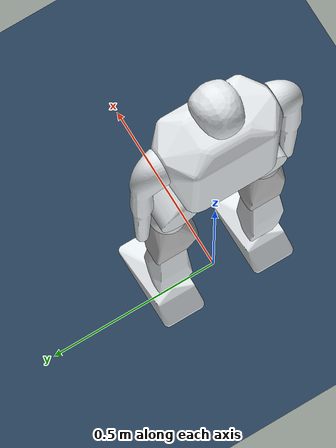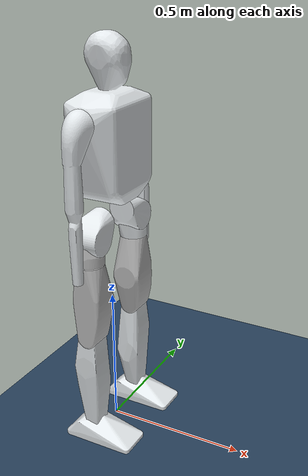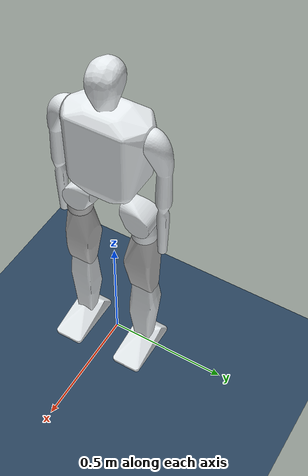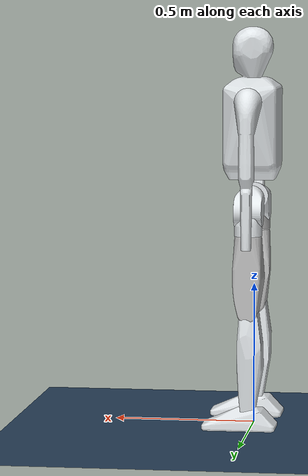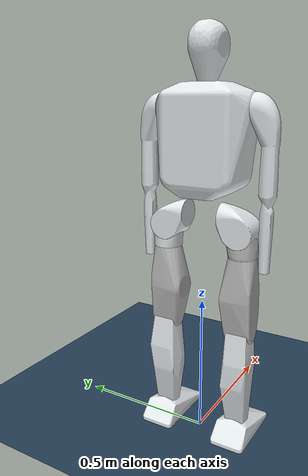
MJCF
<mujoco model="hhfc">
  <compiler angle="radian" meshdir="../meshes/" eulerseq="zyx" />
  <statistic meansize="0.201559" extent="2.948112" center="0.00499457 0 0.337764"/>

  <default>
      <joint limited='true'/>
      <motor ctrllimited='true'/>
      <geom  condim='4' contype="1" conaffinity="15" solref='0.001 2' friction='0.9 0.2 0.2'/>
      <equality solref='0.001 2'/>
      <default class='visualgeom'>
          <geom material='visualgeom' condim='1' contype='0' conaffinity='0'/>
      </default>
      <default class='visualgeom2'>
          <geom material='visualgeom2' condim='1' contype='0' conaffinity='0'/>
      </default>
      <default class='obstacle'>
          <geom material='obstacle' condim='3' contype='1' conaffinity='15'/>
      </default>
      <default class='leg_joint_param'>
          <joint damping="0.0" frictionloss="0.0" armature="0.0"/>
      </default>
  </default>

  <asset>
    <!-- Set ground -->
    <texture name="grid" type="2d" builtin="checker" width="512" height="512" rgb1=".1 .2 .3" rgb2=".2 .3 .4"/>
    <material name="grid" texture="grid" texrepeat="1 1" texuniform="true" reflectance=".2"/>
  </asset>

  <option timestep="0.001" integrator="RK4">
    <flag sensornoise="enable" frictionloss="enable" />
  </option>

  <visual>
    <map stiffness="300" force="0.1" zfar="30"/>
    <rgba haze="0.15 0.25 0.35 1"/>
    <global offwidth="2560" offheight="1440" elevation="-30" azimuth="120"/>
  </visual>

  <asset>
    <mesh name="base_thorax" file="base_thorax.STL"/>
    <mesh name="Lleg_hip_p" file="Lleg_hip_p.STL"/>
    <mesh name="Lleg_hip_r" file="Lleg_hip_r.STL"/>
    <mesh name="Lleg_hip_y" file="Lleg_hip_y.STL"/>
    <mesh name="Lleg_knee" file="Lleg_knee.STL"/>
    <mesh name="Lleg_ankle_p" file="Lleg_ankle_p.STL"/>
    <mesh name="Lleg_ankle_r" file="Lleg_ankle_r.STL"/>
    <mesh name="Rleg_hip_p" file="Rleg_hip_p.STL"/>
    <mesh name="Rleg_hip_r" file="Rleg_hip_r.STL"/>
    <mesh name="Rleg_hip_y" file="Rleg_hip_y.STL"/>
    <mesh name="Rleg_knee" file="Rleg_knee.STL"/>
    <mesh name="Rleg_ankle_p" file="Rleg_ankle_p.STL"/>
    <mesh name="Rleg_ankle_r" file="Rleg_ankle_r.STL"/>
    <mesh name="Larm_shoulder_p" file="Larm_shoulder_p.STL"/>
    <mesh name="Rarm_shoulder_p" file="Rarm_shoulder_p.STL"/>
  </asset>

  <worldbody>
    <!-- Main Light Source -->
    <light name="main_light" diffuse="2 2 2" specular="0.5 0.5 0.5" pos="0 0 40" dir="0 0 -1" castshadow="true"/>
    <!-- Auxiliary Light Sources-->
    <light name="aux_light1" diffuse=".8 .8 .8" pos=" 10 0 1" dir="-1 0 0" castshadow="false"/>
    <light name="aux_light2" diffuse=".8 .8 .8" pos="-10 0 1" dir=" 1 0 0" castshadow="false"/>
    <light name="aux_light3" diffuse=".8 .8 .8" pos="0  10 1" dir="0 -1 0" castshadow="false"/>
    <light name="aux_light4" diffuse=".8 .8 .8" pos="0 -10 1" dir="0  1 0" castshadow="false"/>
    <!-- Floor -->
    <geom name="floor" type="plane" size="0 0 0.05" material="grid"/>

    <body name="base_thorax" pos="0 0 0.906" euler="0 0 0">
      <inertial pos="0.0063842 0.00017156 0.099276"  mass="21.7513" fullinertia="0.51774 0.41969 0.193013 3.96E-05 0.000772 0.000516"/>
      <freejoint name="base_thorax"/>
      <geom size="0.2 0.175 0.3" pos="0 0 0.2" type="box" rgba="0.89804 0.91765 0.92941 0"/>
      <geom type="mesh" contype="0" conaffinity="0" group="1" density="0" rgba="0.89804 0.91765 0.92941 1" mesh="base_thorax"/>
      <site name="imu_site" pos="0 0 0" size="0.02" rgba="1 0 0 1" type="sphere" />
      <site name='imu' size='0.01' pos='0.0 0 0.0'/>

      <body name="Lleg_hip_p" pos="0.0074413 0.070763 -0.096701" quat="1 -1.49195e-05 9.221e-11 -6.1805e-06">
        <inertial pos="-0.0080076 0.037645 -0.018534" quat="0.414257 0.709337 0.188122 0.53837" mass="0.8" diaginertia="0.00249693 0.00187387 0.00185259"/>
        <joint name="Lleg_hip_p_joint" pos="0 0 0" axis="0 -1 0" range="-1.5708 3.1416" class="leg_joint_param"/>
        <geom type="mesh" contype="0" conaffinity="0" group="1" density="0" rgba="0.89804 0.91765 0.92941 1" mesh="Lleg_hip_p"/>

        <body name="Lleg_hip_r" pos="-0.048264 0.063739 -0.039998" quat="1 -1.49194e-05 -1.55901e-05 6.18077e-06">
          <inertial pos="0.042398 0.0021906 -0.014152" quat="0.717776 -0.00466495 -0.115772 0.686566" mass="2.4" diaginertia="0.00470642 0.00421976 0.00322592"/>
          <joint name="Lleg_hip_r_joint" pos="0 0 0" axis="1 0 0" range="-0.12217 0.52359" class="leg_joint_param"/>
          <geom type="mesh" contype="0" conaffinity="0" group="1" density="0" rgba="0.89804 0.91765 0.92941 1" mesh="Lleg_hip_r"/>
          <geom size="0.05 0.1" pos="0.05 0 -0.225" type="cylinder" rgba="0.89804 0.91765 0.92941 0"/>

          <body name="Lleg_hip_y" pos="0.048263 0.0075949 -0.073228" quat="1 -0.0006421 0 0">
            <inertial pos="0.0012794 -0.012189 -0.11613" quat="0.996816 -0.0530944 -0.0162506 -0.0572273" mass="4.7" diaginertia="0.0299281 0.0291921 0.00657282"/>
            <joint name="Lleg_hip_y_joint" pos="0 0 0" axis="0 0 1" range="-1.0472 1.2217" class="leg_joint_param"/>
            <geom type="mesh" contype="0" conaffinity="0" group="1" density="0" rgba="0.75294 0.75294 0.75294 1" mesh="Lleg_hip_y"/>

            <body name="Lleg_knee" pos="0 0 -0.27926">
              <inertial pos="-0.0093168 0.0004254 -0.1569" quat="0.997868 -0.0245164 0.0336298 0.0502756" mass="4.4" diaginertia="0.033405 0.0314582 0.0069106"/>
              <joint name="Lleg_knee_joint" pos="0 0 0" axis="0 -1 0" range="-1.5708 0" class="leg_joint_param"/>
              <geom type="mesh" contype="0" conaffinity="0" group="1" density="0" rgba="0.89804 0.91765 0.92941 1" mesh="Lleg_knee"/>
              <geom size="0.05 0.125" pos="0 0 -0.175" type="cylinder" rgba="0.89804 0.91765 0.92941 0"/>

              <body name="Lleg_ankle_p" pos="0 0 -0.35">
                <inertial pos="0.00066352 -5.5018e-08 8.196e-09" quat="0.499943 0.499943 -0.500057 0.500057" mass="0.24" diaginertia="0.000135 0.000113 5.24e-05"/>
                <joint name="Lleg_ankle_p_joint" pos="0 0 0" axis="0 1 0" range="-1.6108 0.6108" class="leg_joint_param"/>
                <geom type="mesh" contype="0" conaffinity="0" group="1" density="0" rgba="0.89804 0.91765 0.92941 1" mesh="Lleg_ankle_p"/>

                <body name="Lleg_ankle_r">
                  <inertial pos="0.021653 2.4998e-08 -0.044273" quat="1.13655e-06 0.717415 -1.10364e-06 0.696646" mass="0.88" diaginertia="0.00668964 0.005724 0.00130736"/>
                  <joint name="Lleg_ankle_r_joint" pos="0 0 0" axis="1 0 0" range="-0.34453292519943295 0.34453292519943295" class="leg_joint_param"/>
                  <geom type="mesh" contype="0" conaffinity="0" group="1" density="0" rgba="0.89804 0.91765 0.92941 1" mesh="Lleg_ankle_r"/>
                  <geom name="Lleg_ankle_r" type="mesh" rgba="0.89804 0.91765 0.92941 0" mesh="Lleg_ankle_r"/>
                </body>
              </body>
            </body>
          </body>
        </body>
      </body>

      <body name="Rleg_hip_p" pos="0.0074402 -0.070762 -0.096701" quat="1 1.49195e-05 -9.221e-11 -6.1805e-06">
        <inertial pos="-0.0080033 -0.037645 -0.018534" quat="0.709009 0.414898 0.538551 0.187424" mass="0.8" diaginertia="0.00249686 0.00187362 0.00185253"/>
        <joint name="Rleg_hip_p_joint" pos="0 0 0" axis="0 -1 0" range="-1.5708 3.1416" class="leg_joint_param"/>
        <geom type="mesh" contype="0" conaffinity="0" group="1" density="0" rgba="0.89804 0.91765 0.92941 1" mesh="Rleg_hip_p"/>

        <body name="Rleg_hip_r" pos="-0.048261 -0.063738 -0.039998" quat="1 -1.49194e-05 -1.55901e-05 6.18077e-06">
          <inertial pos="0.042392 -0.0022474 -0.014239" quat="0.688789 -0.114585 -0.00306577 0.715843" mass="2.4" diaginertia="0.00471825 0.00423405 0.00323269"/>
          <joint name="Rleg_hip_r_joint" pos="0 0 0" axis="1 0 0" range="-0.52359 0.12217" class="leg_joint_param"/>
          <geom type="mesh" contype="0" conaffinity="0" group="1" density="0" rgba="0.75294 0.75294 0.75294 1" mesh="Rleg_hip_r"/>
          <geom size="0.05 0.1" pos="0.05 0 -0.225" type="cylinder" rgba="0.75294 0.75294 0.75294 0"/>

          <body name="Rleg_hip_y" pos="0.048263 -0.0075949 -0.073228" quat="1 -0.0006421 1.559e-05 1.00103e-08">
            <inertial pos="0.0012651 0.012199 -0.11598" quat="0.996226 0.0535852 -0.0154666 0.0665041" mass="4.7" diaginertia="0.0298237 0.0290669 0.00653037"/>
            <joint name="Rleg_hip_y_joint" pos="0 0 0" axis="0 0 1" range="-1.2217 1.0472" class="leg_joint_param"/>
            <geom type="mesh" contype="0" conaffinity="0" group="1" density="0" rgba="0.75294 0.75294 0.75294 1" mesh="Rleg_hip_y"/>

            <body name="Rleg_knee" pos="0 0 -0.27926">
              <inertial pos="-0.0080323 -0.0016076 -0.15944" quat="0.503618 0.498429 -0.471667 0.524851" mass="4.4" diaginertia="0.0334195 0.0311732 0.00644732"/>
              <joint name="Rleg_knee_joint" pos="0 0 0" axis="0 -1 0" range="-1.5708 0" class="leg_joint_param"/>
              <geom type="mesh" contype="0" conaffinity="0" group="1" density="0" rgba="0.89804 0.91765 0.92941 1" mesh="Rleg_knee"/>
              <geom size="0.05 0.125" pos="0 0 -0.175" type="cylinder" rgba="0.89804 0.91765 0.92941 0"/>

              <body name="Rleg_ankle_p" pos="0 0 -0.35">
                <inertial pos="0.00099756 8.2521e-08 6.9572e-08" quat="0.5 0.5 -0.5 0.5" mass="0.24" diaginertia="0.000135 0.000113 5.3e-05"/>
                <joint name="Rleg_ankle_p_joint" pos="0 0 0" axis="0 1 0" range="-1.6108 0.6108" class="leg_joint_param"/>
                <geom type="mesh" contype="0" conaffinity="0" group="1" density="0" rgba="0.89804 0.91765 0.92941 1" mesh="Rleg_ankle_p"/>

                <body name="Rleg_ankle_r">
                  <inertial pos="0.021653 2.5592e-08 -0.044273" quat="0 0.717415 0 0.696646" mass="0.88" diaginertia="0.00668964 0.005725 0.00130736"/>
                  <joint name="Rleg_ankle_r_joint" pos="0 0 0" axis="1 0 0" range="-0.34453292519943295 0.34453292519943295" class="leg_joint_param"/>
                  <geom type="mesh" contype="0" conaffinity="0" group="1" density="0" rgba="0.89804 0.91765 0.92941 1" mesh="Rleg_ankle_r"/>
                  <geom name="Rleg_ankle_r" type="mesh" rgba="0.89804 0.91765 0.92941 0" mesh="Rleg_ankle_r"/>
                </body>
              </body>
            </body>
          </body>
        </body>
      </body>
      <body name="Larm_shoulder_p" pos="0.0074411 0.17676 0.2503" quat="1 -1.559e-05 0 0">
        <inertial pos="-4.0039e-06 0.029969 -0.17382" quat="0.706747 0.0225512 -0.0225512 0.706747" mass="0.9" diaginertia="0.0219046 0.021867 0.000591376"/>
        <joint name="Larm_shoulder_p_joint" pos="0 0 0" axis="0 -1 0" range="-3.1416 3.1416" class="leg_joint_param"/>
        <geom type="mesh" contype="0" conaffinity="0" group="1" density="0" rgba="0.89804 0.91765 0.92941 1" mesh="Larm_shoulder_p"/>
      </body>

      <body name="Rarm_shoulder_p" pos="0.0074404 -0.17676 0.2503" quat="1 1.55905e-05 0.0008107 -1.26392e-08">
        <inertial pos="0.00016699 -0.03005 -0.17441" quat="0.706778 -0.0228932 0.0222331 0.706716" mass="0.9" diaginertia="0.0219559 0.021918 0.000591056"/>
        <joint name="Rarm_shoulder_p_joint" pos="0 0 0" axis="0 -1 0" range="-3.1416 3.1416" class="leg_joint_param"/>
        <geom type="mesh" contype="0" conaffinity="0" group="1" density="0" rgba="0.89804 0.91765 0.92941 1" mesh="Rarm_shoulder_p"/>
      </body>
    </body>

  </worldbody>

  <contact>

  </contact>

  <actuator>
    <motor name="Lleg_hip_p_joint"   joint="Lleg_hip_p_joint"   gear="1" ctrllimited="true" ctrlrange="-200 200"/>
    <motor name="Lleg_hip_r_joint"  joint="Lleg_hip_r_joint"  gear="1" ctrllimited="true" ctrlrange="-200 200"/>
    <motor name="Lleg_hip_y_joint"  joint="Lleg_hip_y_joint"  gear="1" ctrllimited="true" ctrlrange="-200 200"/>
    <motor name="Lleg_knee_joint"  joint="Lleg_knee_joint"  gear="1" ctrllimited="true" ctrlrange="-200 200"/>
    <motor name="Lleg_ankle_p_joint"   joint="Lleg_ankle_p_joint"   gear="1" ctrllimited="true" ctrlrange="-200 200"/>
    <motor name="Lleg_ankle_r_joint"  joint="Lleg_ankle_r_joint"  gear="1" ctrllimited="true" ctrlrange="-200 200"/>

    <motor name="Rleg_hip_p_joint"  joint="Rleg_hip_p_joint"  gear="1" ctrllimited="true" ctrlrange="-200 200"/>
    <motor name="Rleg_hip_r_joint"  joint="Rleg_hip_r_joint"  gear="1" ctrllimited="true" ctrlrange="-200 200"/>
    <motor name="Rleg_hip_y_joint"  joint="Rleg_hip_y_joint"  gear="1" ctrllimited="true" ctrlrange="-200 200"/>
    <motor name="Rleg_knee_joint"  joint="Rleg_knee_joint"  gear="1" ctrllimited="true" ctrlrange="-200 200"/>
    <motor name="Rleg_ankle_p_joint"   joint="Rleg_ankle_p_joint"   gear="1" ctrllimited="true" ctrlrange="-200 200"/>
    <motor name="Rleg_ankle_r_joint"  joint="Rleg_ankle_r_joint"  gear="1" ctrllimited="true" ctrlrange="-200 200"/>

    <motor name="Larm_shoulder_p_joint"  joint="Larm_shoulder_p_joint"  gear="1" ctrllimited="true" ctrlrange="-200 200"/>
    <motor name="Rarm_shoulder_p_joint"  joint="Rarm_shoulder_p_joint"  gear="1" ctrllimited="true" ctrlrange="-200 200"/>
  </actuator>

  <sensor>
    <accelerometer name="imu_acc" site="imu_site" />
    <gyro name="imu_gyro" site="imu_site" />
    <framepos name="imu_pos" objtype="site" objname="imu_site" />
    <framelinvel name="imu_linvel" objtype="site" objname="imu_site" />

    <framequat     name='orientation' objtype='site' noise='0.001' objname='imu'/>
    <framepos     name='position' objtype='site' noise='0.001' objname='imu'/>
    <gyro          name='angular-velocity'    site='imu' noise='0.005' cutoff='34.9'/>
    <velocimeter   name='linear-velocity'     site='imu' noise='0.001' cutoff='30'/>
    <accelerometer name='linear-acceleration' site='imu' noise='0.005' cutoff='157'/>
    <magnetometer  name='magnetometer'        site='imu'/>
  </sensor>
</mujoco>
